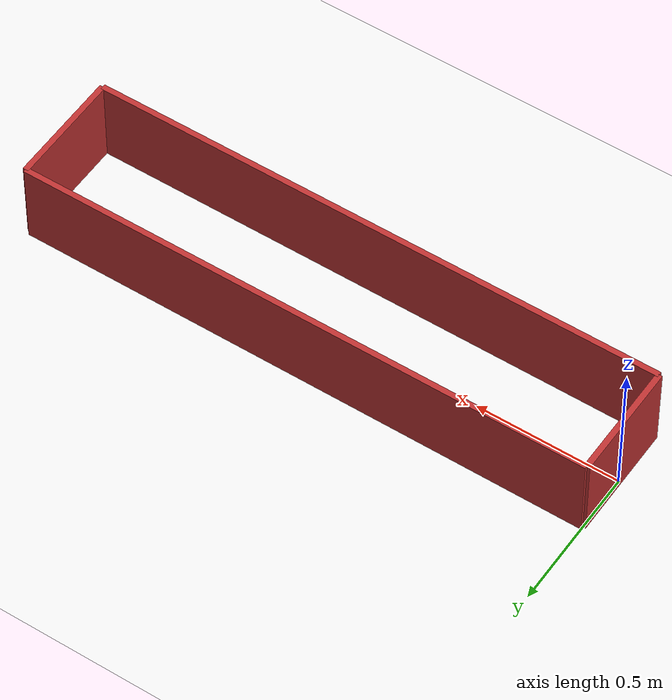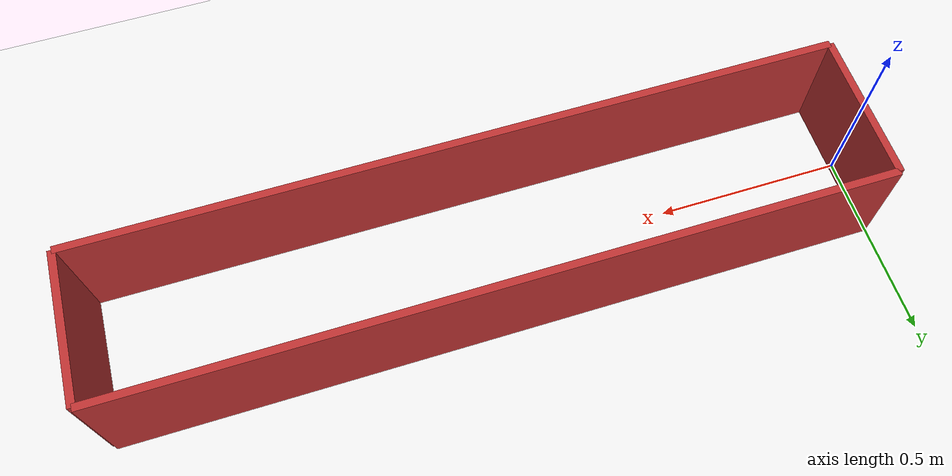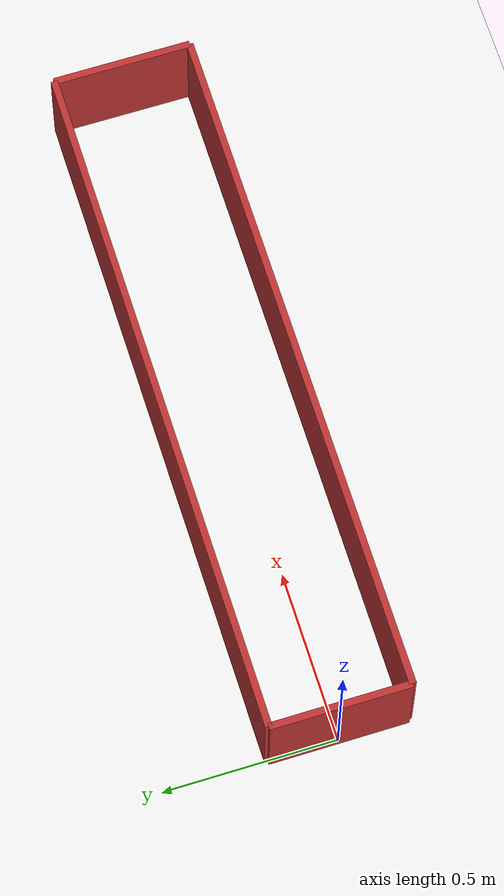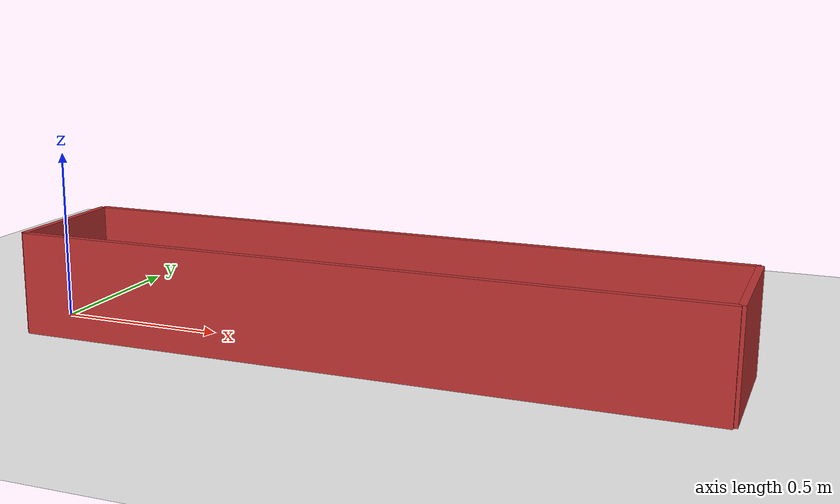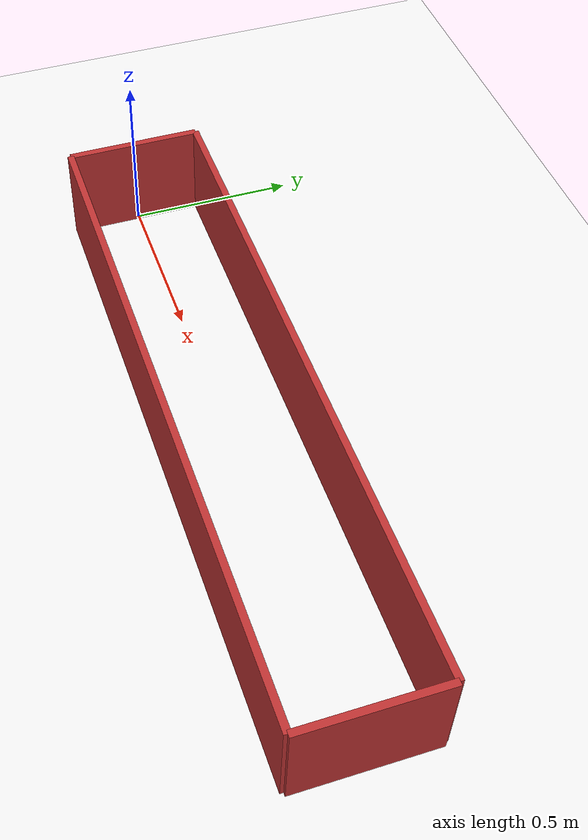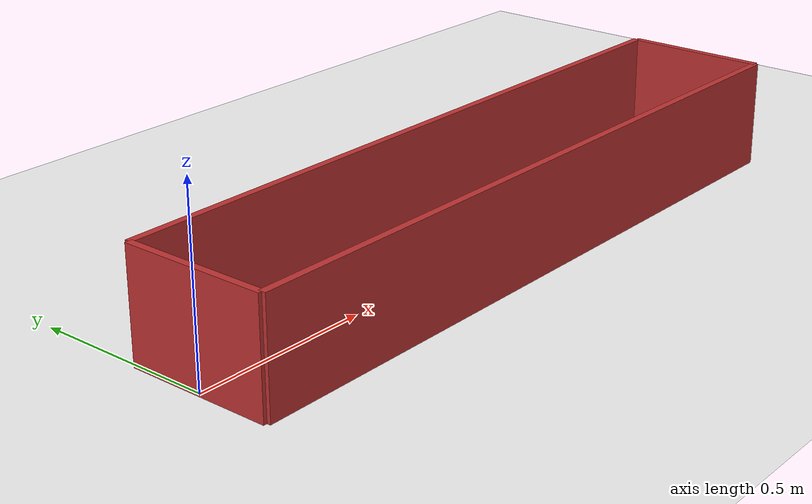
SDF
<?xml version="1.0"?>
<sdf version="1.10">
  <world name="corridor_straight">

    <physics name="default_physics" default="0" type="ode">
      <max_step_size>0.001</max_step_size>
      <real_time_factor>1.0</real_time_factor>
    </physics>

    <plugin filename="gz-sim-physics-system"            name="gz::sim::systems::Physics"/>
    <plugin filename="gz-sim-user-commands-system"      name="gz::sim::systems::UserCommands"/>
    <plugin filename="gz-sim-scene-broadcaster-system"  name="gz::sim::systems::SceneBroadcaster"/>
    <plugin filename="gz-sim-sensors-system"            name="gz::sim::systems::Sensors">
      <render_engine>ogre2</render_engine>
    </plugin>
    <plugin filename="gz-sim-imu-system"                name="gz::sim::systems::Imu"/>

    <scene>
      <ambient>0.6 0.6 0.6 1</ambient>
      <background>0.9 0.9 0.95 1</background>
    </scene>

    <light type="directional" name="sun">
      <cast_shadows>true</cast_shadows>
      <pose>0 0 10 0 0 0</pose>
      <diffuse>0.9 0.9 0.9 1</diffuse>
      <specular>0.2 0.2 0.2 1</specular>
      <direction>-0.3 0.3 -1</direction>
    </light>

    <model name="ground_plane">
      <static>true</static>
      <link name="link">
        <collision name="collision">
          <geometry><plane><normal>0 0 1</normal><size>10 10</size></plane></geometry>
        </collision>
        <visual name="visual">
          <geometry><plane><normal>0 0 1</normal><size>10 10</size></plane></geometry>
          <material>
            <ambient>0.95 0.95 0.95 1</ambient>
            <diffuse>0.95 0.95 0.95 1</diffuse>
          </material>
        </visual>
      </link>
    </model>

    <!-- Walls (red): 30 cm tall, 2 cm thick.  Lidar at z ≈ 0.20 m sees them. -->

    <!-- LEFT wall  (along +x), centered at y = +0.2 -->
    <model name="wall_left">
      <static>true</static>
      <pose>1.0 0.2 0.15 0 0 0</pose>
      <link name="link">
        <collision name="c"><geometry><box><size>2.0 0.02 0.3</size></box></geometry></collision>
        <visual name="v">
          <geometry><box><size>2.0 0.02 0.3</size></box></geometry>
          <material><ambient>0.75 0.2 0.2 1</ambient><diffuse>0.75 0.2 0.2 1</diffuse></material>
        </visual>
      </link>
    </model>

    <!-- RIGHT wall (along +x), centered at y = -0.2 -->
    <model name="wall_right">
      <static>true</static>
      <pose>1.0 -0.2 0.15 0 0 0</pose>
      <link name="link">
        <collision name="c"><geometry><box><size>2.0 0.02 0.3</size></box></geometry></collision>
        <visual name="v">
          <geometry><box><size>2.0 0.02 0.3</size></box></geometry>
          <material><ambient>0.75 0.2 0.2 1</ambient><diffuse>0.75 0.2 0.2 1</diffuse></material>
        </visual>
      </link>
    </model>

    <!-- SOUTH end-wall (behind robot at spawn) -->
    <model name="wall_south">
      <static>true</static>
      <pose>0.0 0.0 0.15 0 0 0</pose>
      <link name="link">
        <collision name="c"><geometry><box><size>0.02 0.4 0.3</size></box></geometry></collision>
        <visual name="v">
          <geometry><box><size>0.02 0.4 0.3</size></box></geometry>
          <material><ambient>0.75 0.2 0.2 1</ambient><diffuse>0.75 0.2 0.2 1</diffuse></material>
        </visual>
      </link>
    </model>

    <!-- NORTH end-wall (far end) -->
    <model name="wall_north">
      <static>true</static>
      <pose>2.0 0.0 0.15 0 0 0</pose>
      <link name="link">
        <collision name="c"><geometry><box><size>0.02 0.4 0.3</size></box></geometry></collision>
        <visual name="v">
          <geometry><box><size>0.02 0.4 0.3</size></box></geometry>
          <material><ambient>0.75 0.2 0.2 1</ambient><diffuse>0.75 0.2 0.2 1</diffuse></material>
        </visual>
      </link>
    </model>

  </world>
</sdf>
